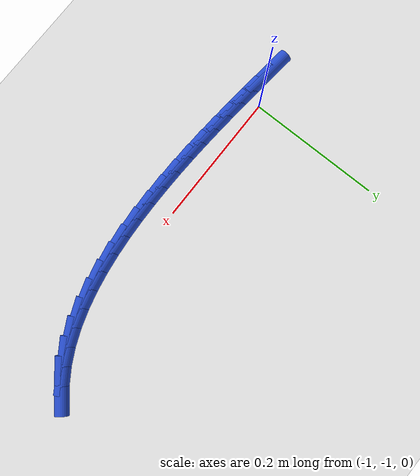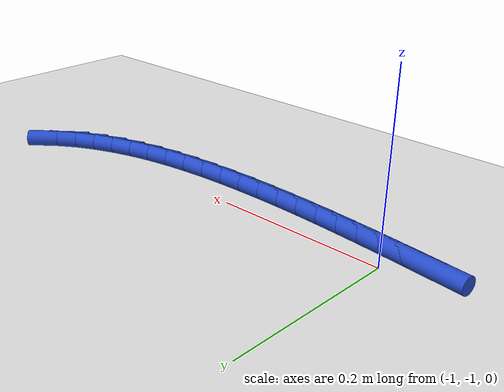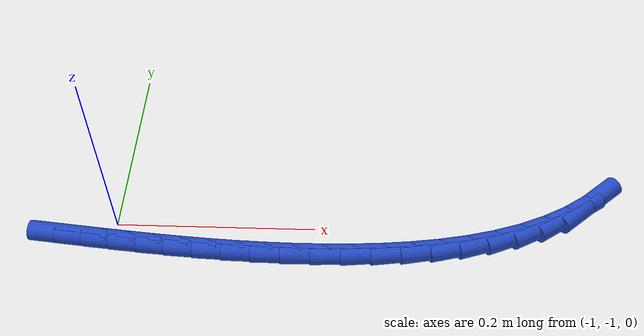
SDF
<sdf version="1.6">
 <world name="default">
  <model name="ground_plane">
   <static>1</static>
   <link name="link">
    <collision name="collision">
     <geometry><plane><normal>0 0 1</normal><size>100 100</size></plane></geometry>
     <surface><friction><ode><mu>100</mu><mu2>50</mu2></ode></friction></surface>
    </collision>
    <visual name="visual">
     <cast_shadows>0</cast_shadows>
     <geometry><plane><normal>0 0 1</normal><size>100 100</size></plane></geometry>
     <material>
      <script><uri>file://media/materials/scripts/gazebo.material</uri><name>Gazebo/WhiteGlow</name></script>
     </material>
    </visual>
   </link>
  </model>
  <model name="line">
   <link name="link_180">
    <pose>-1.0429678067290413 -1.0200746661988196 0.01 0 1.57 -0.10417773309900633</pose>
    <collision name="collision">
     <geometry><cylinder><radius>0.01</radius><length>0.08</length></cylinder></geometry>
    </collision>
    <visual name="visual">
     <material>
      <script><name>Gazebo/Blue</name><uri>file://media/materials/scripts/gazebo.material</uri></script>
     </material>
     <geometry><cylinder><radius>0.01</radius><length>0.08</length></cylinder></geometry>
    </visual>
   </link>
   <link name="link_181">
    <pose>-1.0159846327294904 -1.0228959258673342 0.01 0 1.57 -0.10000645493926504</pose>
    <collision name="collision">
     <geometry><cylinder><radius>0.01</radius><length>0.08</length></cylinder></geometry>
    </collision>
    <visual name="visual">
     <material>
      <script><name>Gazebo/Blue</name><uri>file://media/materials/scripts/gazebo.material</uri></script>
     </material>
     <geometry><cylinder><radius>0.01</radius><length>0.08</length></cylinder></geometry>
    </visual>
   </link>
   <link name="link_182">
    <pose>-0.9888735665555376 -1.0256162825639208 0.01 0 1.57 -0.09304655913331783</pose>
    <collision name="collision">
     <geometry><cylinder><radius>0.01</radius><length>0.08</length></cylinder></geometry>
    </collision>
    <visual name="visual">
     <material>
      <script><name>Gazebo/Blue</name><uri>file://media/materials/scripts/gazebo.material</uri></script>
     </material>
     <geometry><cylinder><radius>0.01</radius><length>0.08</length></cylinder></geometry>
    </visual>
   </link>
   <link name="link_183">
    <pose>-0.9616012838220086 -1.028161223286852 0.01 0 1.57 -0.08336213570528513</pose>
    <collision name="collision">
     <geometry><cylinder><radius>0.01</radius><length>0.08</length></cylinder></geometry>
    </collision>
    <visual name="visual">
     <material>
      <script><name>Gazebo/Blue</name><uri>file://media/materials/scripts/gazebo.material</uri></script>
     </material>
     <geometry><cylinder><radius>0.01</radius><length>0.08</length></cylinder></geometry>
    </visual>
   </link>
   <link name="link_184">
    <pose>-0.9341344601437281 -1.0304562350343998 0.01 0 1.57 -0.071033630411041</pose>
    <collision name="collision">
     <geometry><cylinder><radius>0.01</radius><length>0.08</length></cylinder></geometry>
    </collision>
    <visual name="visual">
     <material>
      <script><name>Gazebo/Blue</name><uri>file://media/materials/scripts/gazebo.material</uri></script>
     </material>
     <geometry><cylinder><radius>0.01</radius><length>0.08</length></cylinder></geometry>
    </visual>
   </link>
   <link name="link_185">
    <pose>-0.9064397711355205 -1.0324268048048366 0.01 0 1.57 -0.056158573339213924</pose>
    <collision name="collision">
     <geometry><cylinder><radius>0.01</radius><length>0.08</length></cylinder></geometry>
    </collision>
    <visual name="visual">
     <material>
      <script><name>Gazebo/Blue</name><uri>file://media/materials/scripts/gazebo.material</uri></script>
     </material>
     <geometry><cylinder><radius>0.01</radius><length>0.08</length></cylinder></geometry>
    </visual>
   </link>
   <link name="link_186">
    <pose>-0.8784838924122121 -1.033998419596434 0.01 0 1.57 -0.038852351876338176</pose>
    <collision name="collision">
     <geometry><cylinder><radius>0.01</radius><length>0.08</length></cylinder></geometry>
    </collision>
    <visual name="visual">
     <material>
      <script><name>Gazebo/Blue</name><uri>file://media/materials/scripts/gazebo.material</uri></script>
     </material>
     <geometry><cylinder><radius>0.01</radius><length>0.08</length></cylinder></geometry>
    </visual>
   </link>
   <link name="link_187">
    <pose>-0.8502334995886276 -1.035096566407465 0.01 0 1.57 -0.019248842671154457</pose>
    <collision name="collision">
     <geometry><cylinder><radius>0.01</radius><length>0.08</length></cylinder></geometry>
    </collision>
    <visual name="visual">
     <material>
      <script><name>Gazebo/Blue</name><uri>file://media/materials/scripts/gazebo.material</uri></script>
     </material>
     <geometry><cylinder><radius>0.01</radius><length>0.08</length></cylinder></geometry>
    </visual>
   </link>
   <link name="link_188">
    <pose>-0.8216552682795919 -1.0356467322362015 0.01 0 1.57 0.0025067996159886105</pose>
    <collision name="collision">
     <geometry><cylinder><radius>0.01</radius><length>0.08</length></cylinder></geometry>
    </collision>
    <visual name="visual">
     <material>
      <script><name>Gazebo/Blue</name><uri>file://media/materials/scripts/gazebo.material</uri></script>
     </material>
     <geometry><cylinder><radius>0.01</radius><length>0.08</length></cylinder></geometry>
    </visual>
   </link>
   <link name="link_189">
    <pose>-0.7927164699608021 -1.0355741883157323 0.01 0 1.57 0.027297480883965077</pose>
    <collision name="collision">
     <geometry><cylinder><radius>0.01</radius><length>0.08</length></cylinder></geometry>
    </collision>
    <visual name="visual">
     <material>
      <script><name>Gazebo/Blue</name><uri>file://media/materials/scripts/gazebo.material</uri></script>
     </material>
     <geometry><cylinder><radius>0.01</radius><length>0.08</length></cylinder></geometry>
    </visual>
   </link>
   <link name="link_190">
    <pose>-0.7634637492644765 -1.034775464331483 0.01 0 1.57 0.05734744454083458</pose>
    <collision name="collision">
     <geometry><cylinder><radius>0.01</radius><length>0.08</length></cylinder></geometry>
    </collision>
    <visual name="visual">
     <material>
      <script><name>Gazebo/Blue</name><uri>file://media/materials/scripts/gazebo.material</uri></script>
     </material>
     <geometry><cylinder><radius>0.01</radius><length>0.08</length></cylinder></geometry>
    </visual>
   </link>
   <link name="link_191">
    <pose>-0.7341019812995243 -1.03308979366132 0.01 0 1.57 0.09341762864374231</pose>
    <collision name="collision">
     <geometry><cylinder><radius>0.01</radius><length>0.08</length></cylinder></geometry>
    </collision>
    <visual name="visual">
     <material>
      <script><name>Gazebo/Blue</name><uri>file://media/materials/scripts/gazebo.material</uri></script>
     </material>
     <geometry><cylinder><radius>0.01</radius><length>0.08</length></cylinder></geometry>
    </visual>
   </link>
   <link name="link_192">
    <pose>-0.7048548029250017 -1.0303496159286514 0.01 0 1.57 0.13621076551166508</pose>
    <collision name="collision">
     <geometry><cylinder><radius>0.01</radius><length>0.08</length></cylinder></geometry>
    </collision>
    <visual name="visual">
     <material>
      <script><name>Gazebo/Blue</name><uri>file://media/materials/scripts/gazebo.material</uri></script>
     </material>
     <geometry><cylinder><radius>0.01</radius><length>0.08</length></cylinder></geometry>
    </visual>
   </link>
   <link name="link_193">
    <pose>-0.6759458509999666 -1.0263873707568845 0.01 0 1.57 0.18660154946947455</pose>
    <collision name="collision">
     <geometry><cylinder><radius>0.01</radius><length>0.08</length></cylinder></geometry>
    </collision>
    <visual name="visual">
     <material>
      <script><name>Gazebo/Blue</name><uri>file://media/materials/scripts/gazebo.material</uri></script>
     </material>
     <geometry><cylinder><radius>0.01</radius><length>0.08</length></cylinder></geometry>
    </visual>
   </link>
   <link name="link_194">
    <pose>-0.647598762383475 -1.0210354977694278 0.01 0 1.57 0.24561590435022634</pose>
    <collision name="collision">
     <geometry><cylinder><radius>0.01</radius><length>0.08</length></cylinder></geometry>
    </collision>
    <visual name="visual">
     <material>
      <script><name>Gazebo/Blue</name><uri>file://media/materials/scripts/gazebo.material</uri></script>
     </material>
     <geometry><cylinder><radius>0.01</radius><length>0.08</length></cylinder></geometry>
    </visual>
   </link>
   <link name="link_195">
    <pose>-0.6200371739345828 -1.0141264365896878 0.01 0 1.57 0.3143771055877294</pose>
    <collision name="collision">
     <geometry><cylinder><radius>0.01</radius><length>0.08</length></cylinder></geometry>
    </collision>
    <visual name="visual">
     <material>
      <script><name>Gazebo/Blue</name><uri>file://media/materials/scripts/gazebo.material</uri></script>
     </material>
     <geometry><cylinder><radius>0.01</radius><length>0.08</length></cylinder></geometry>
    </visual>
   </link>
   <link name="link_196">
    <pose>-0.5934847225123472 -1.0054926268410733 0.01 0 1.57 0.3939917090568899</pose>
    <collision name="collision">
     <geometry><cylinder><radius>0.01</radius><length>0.08</length></cylinder></geometry>
    </collision>
    <visual name="visual">
     <material>
      <script><name>Gazebo/Blue</name><uri>file://media/materials/scripts/gazebo.material</uri></script>
     </material>
     <geometry><cylinder><radius>0.01</radius><length>0.08</length></cylinder></geometry>
    </visual>
   </link>
   <link name="link_197">
    <pose>-0.568165044975824 -0.9949665081469907 0.01 0 1.57 0.4853430027137005</pose>
    <collision name="collision">
     <geometry><cylinder><radius>0.01</radius><length>0.08</length></cylinder></geometry>
    </collision>
    <visual name="visual">
     <material>
      <script><name>Gazebo/Blue</name><uri>file://media/materials/scripts/gazebo.material</uri></script>
     </material>
     <geometry><cylinder><radius>0.01</radius><length>0.08</length></cylinder></geometry>
    </visual>
   </link>
   <link name="link_198">
    <pose>-0.5443017781840703 -0.9823805201308489 0.01 0 1.57 0.5887700962241672</pose>
    <collision name="collision">
     <geometry><cylinder><radius>0.01</radius><length>0.08</length></cylinder></geometry>
    </collision>
    <visual name="visual">
     <material>
      <script><name>Gazebo/Blue</name><uri>file://media/materials/scripts/gazebo.material</uri></script>
     </material>
     <geometry><cylinder><radius>0.01</radius><length>0.08</length></cylinder></geometry>
    </visual>
   </link>
   <link name="link_199">
    <pose>-0.5221185589961423 -0.9675671024160546 0.01 0 1.57 0.7036533693084144</pose>
    <collision name="collision">
     <geometry><cylinder><radius>0.01</radius><length>0.08</length></cylinder></geometry>
    </collision>
    <visual name="visual">
     <material>
      <script><name>Gazebo/Blue</name><uri>file://media/materials/scripts/gazebo.material</uri></script>
     </material>
     <geometry><cylinder><radius>0.01</radius><length>0.08</length></cylinder></geometry>
    </visual>
   </link>
  </model>
 </world>
</sdf>
